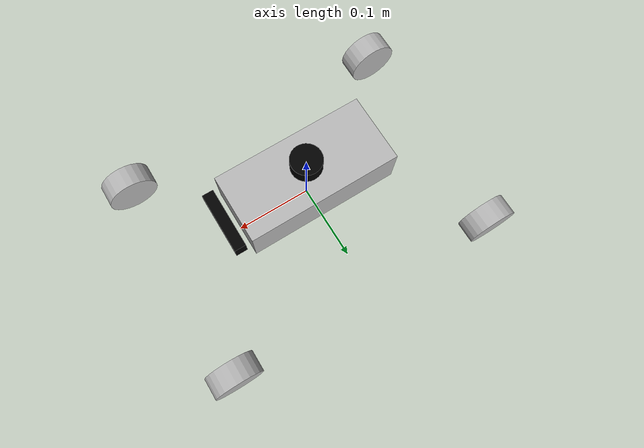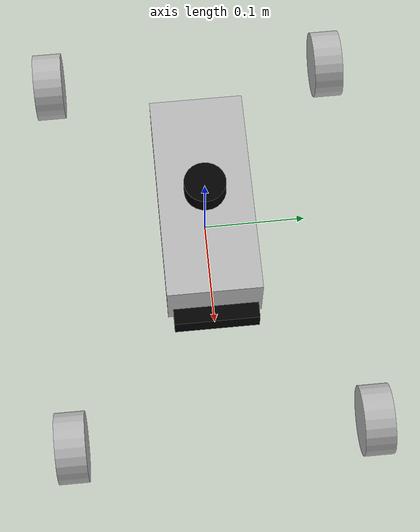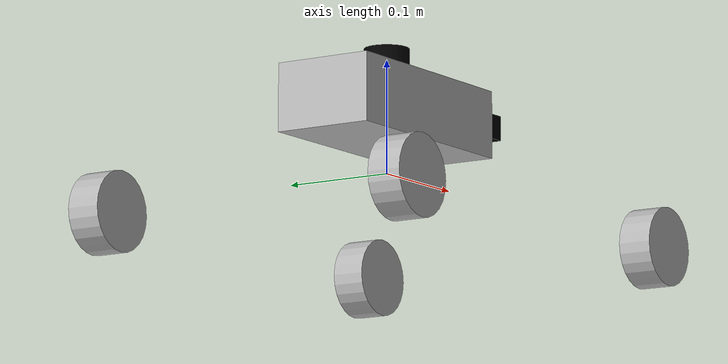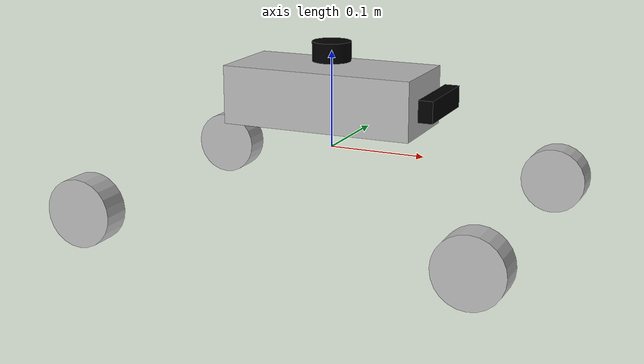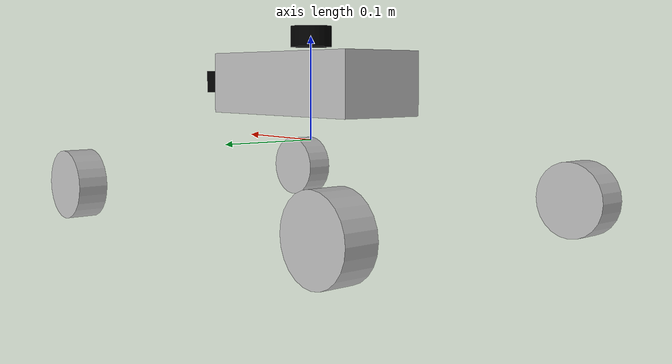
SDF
<?xml version="1.0" ?>
<sdf version="1.5">
  <model name="basic_mobile_bot">
  <static>false</static>

  <!-- ****************** ROBOT BASE FOOTPRINT ***************************  -->
  <pose>0.0 0.0 0.0 0.0 0.0 0.0</pose>
  <link name="base_footprint"/>

  <!-- ********************** ROBOT BASE *********************************  -->
  <link name="base_link">

    <collision name="base_collision">
      <pose>0 0 0.055 0 0 0</pose>
      <geometry>
        <box>
          <size>0 0 0.055 0 0 0</size>
        </box>
      </geometry>
    </collision>

    <visual name="base_visual">
     <pose>0 0 0.055 0 0 0</pose>
      <geometry>
      	<box>
          <size>0.2 0.09 0.06</size>
        </box>
       </geometry>
    </visual>
  </link>

  <!-- *********************** IMU SENSOR SETUP **************************  -->
  <link name="imu_link">
    <gravity>true</gravity>
    <sensor name="bmb_imu" type="imu">
      <always_on>true</always_on>
      <update_rate>100</update_rate>
      <visualize>true</visualize>
      <imu>
        <orientation>
          <x>
            <noise type="gaussian">
              <mean>0.0</mean>
              <stddev>2e-3</stddev>
            </noise>
          </x>
          <y>
            <noise type="gaussian">
              <mean>0.0</mean>
              <stddev>2e-3</stddev>
            </noise>
          </y>
          <z>
            <noise type="gaussian">
              <mean>0.0</mean>
              <stddev>2e-3</stddev>
            </noise>
          </z>
        </orientation>
        <angular_velocity>
          <x>
            <noise type="gaussian">
              <mean>0.0</mean>
              <stddev>2e-4</stddev>
            </noise>
          </x>
          <y>
            <noise type="gaussian">
              <mean>0.0</mean>
              <stddev>2e-4</stddev>
            </noise>
          </y>
          <z>
            <noise type="gaussian">
              <mean>0.0</mean>
              <stddev>2e-4</stddev>
            </noise>
          </z>
        </angular_velocity>
        <linear_acceleration>
          <x>
            <noise type="gaussian">
              <mean>0.0</mean>
              <stddev>1.7e-2</stddev>
            </noise>
          </x>
          <y>
            <noise type="gaussian">
              <mean>0.0</mean>
              <stddev>1.7e-2</stddev>
            </noise>
          </y>
          <z>
            <noise type="gaussian">
              <mean>0.0</mean>
              <stddev>1.7e-2</stddev>
            </noise>
          </z>
        </linear_acceleration>
      </imu>
      <plugin name="basic_mobile_bot_imu" filename="libgazebo_ros_imu_sensor.so">
        <initial_orientation_as_reference>false</initial_orientation_as_reference>
        <frame_name>imu_link</frame_name>
        <ros>
          <namespace>/imu</namespace>
          <remapping>~/out:=data</remapping>
        </ros>
      </plugin>
    </sensor>
  </link>

  <!-- *********************** GPS SETUP *********************************  -->
  <link name="gps_link">
    <sensor name="bmb_gps" type="gps">
      <always_on>true</always_on>
      <update_rate>10.0</update_rate>
      <gps>
        <position_sensing>
          <horizontal>
            <noise type="gaussian">
              <mean>0.0</mean>
              <stddev>1e-2</stddev>
            </noise>
          </horizontal>
          <vertical>
            <noise type="gaussian">
              <mean>0.0</mean>
              <stddev>1</stddev>
            </noise>
          </vertical>
        </position_sensing>
      </gps>
      <plugin name="basic_mobile_bot_gps" filename="libgazebo_ros_gps_sensor.so">
        <ros>
          <remapping>~/out:=gps/fix</remapping>
        </ros>
      </plugin>
    </sensor>
  </link>

  <!-- *********************** DEPTH CAMERA ******************************  -->
	<!-- The depth camera (e.g. Intel Realsense camera). -->
	<link name="camera_depth_frame">
	  <pose>0.12 0 0.65 -1.5708 0 -1.5708</pose>
	</link>

	<link name="camera_link">
	  <pose>0.12 0 0.056 0 0 0</pose>

	  <visual name="camera_visual">
	    <pose>-0.005 0 0 0 0 0</pose>
	    <geometry>
	      <box>
		<size>0.015 0.08 0.022</size>
	      </box>
	    </geometry>
	    <material>
	      <ambient>0 0 0 1.0</ambient>
	      <diffuse>0 0 0 1.0</diffuse>
	      <specular>0.0 0.0 0.0 1.0</specular>
	      <emissive>0.0 0.0 0.0 1.0</emissive>
	    </material>
	  </visual>

	  <sensor name="depth_camera" type="camera">
	    <always_on>true</always_on>
	    <visualize>false</visualize>
	    <update_rate>5</update_rate>
	    <camera name="camera">
	      <horizontal_fov>1.02974</horizontal_fov>
	      <image>
		<width>640</width>
		<height>480</height>
		<format>R8G8B8</format>
	      </image>
	      <clip>
		<near>0.02</near>
		<far>10</far>
	      </clip>
	      <noise>
		<type>gaussian</type>
		<!-- Noise is sampled independently per pixel on each frame.
		     That pixel's noise value is added to each of its color
		      channels, which at that point lie in the range [0,1]. -->
		<mean>0.0</mean>
		<stddev>0.007</stddev>
	      </noise>
	    </camera>
	    <plugin name="depth_camera_controller" filename="libgazebo_ros_camera.so">
	      <camera_name>depth_camera</camera_name>
	      <frame_name>camera_depth_frame</frame_name>
	      <hack_baseline>0</hack_baseline>
	      <min_depth>0.001</min_depth>
	    </plugin>
	  </sensor>
	</link>

  <!-- ****************************** LIDAR *****************************    -->
  <link name="lidar_link">
    <inertial>
      <pose>0.13 0 0.10 0 0 0</pose>
      <inertia>
        <ixx>0.001</ixx>
        <ixy>0.000</ixy>
        <ixz>0.000</ixz>
        <iyy>0.001</iyy>
        <iyz>0.000</iyz>
        <izz>0.001</izz>
      </inertia>
      <mass>0.114</mass>
    </inertial>

    <collision name="lidar_collision">
      <pose>0 0 0.1 0 0 0</pose>
      <geometry>
        <cylinder>
          <radius>0.0508</radius>
          <length>0.18</length>
        </cylinder>
      </geometry>
    </collision>

    <visual name="lidar_visual">
      <pose>0 0 0.1 0 0 0</pose>
      <geometry>
        <cylinder>
          <radius>0.02</radius>
          <length>0.02</length>
        </cylinder>
      </geometry>
      <material>
        <ambient>0.0 0.0 0.0 1.0</ambient>
        <diffuse>0.0 0.0 0.0 1.0</diffuse>
        <specular>0.0 0.0 0.0 1.0</specular>
        <emissive>0.0 0.0 0.0 1.0</emissive>
      </material>
    </visual>

    <sensor name="lidar" type="ray">
      <pose>0 0 0.1 0 0 0</pose>
      <always_on>true</always_on>
      <visualize>false</visualize>
      <update_rate>5</update_rate>
      <ray>
        <scan>
          <horizontal>
            <samples>8000</samples>
            <resolution>1.000000</resolution>
            <min_angle>-3.14159</min_angle>
            <max_angle>3.14159</max_angle>
          </horizontal>
        </scan>
        <range>
          <min>0.3</min>
          <max>15.0</max>
          <resolution>0.015</resolution>
        </range>
        <noise>
          <type>gaussian</type>
          <mean>0.0</mean>
          <stddev>0.01</stddev>
        </noise>
      </ray>
      <plugin name="scan" filename="libgazebo_ros_ray_sensor.so">
        <ros>
          <remapping>~/out:=scan</remapping>
        </ros>
        <output_type>sensor_msgs/LaserScan</output_type>
        <frame_name>lidar_link</frame_name>
      </plugin>
    </sensor>
  </link>

  <!-- *********************** DRIVE WHEELS ******************************  -->

  <link name="bl_link">
    <pose>-0.2 0.15 -0.05 0 1.570796 1.570796</pose>

    <collision name="bl_link_collision">
      <geometry>
        <cylinder>
          <radius>0.035</radius>
          <length>0.03</length>
        </cylinder>
      </geometry>
    </collision>

    <visual name="bl_link_visual">
      <geometry>
        <cylinder>
          <radius>0.035</radius>
          <length>0.03</length>
        </cylinder>
      </geometry>
    </visual>
  </link>

  <link name="br_link">
    <pose>-0.2 -0.15 -0.05 0 1.570796 1.570796</pose>

    <collision name="br_link_collision">
      <geometry>
        <cylinder>
          <radius>0.035</radius>
          <length>0.03</length>
        </cylinder>
      </geometry>
    </collision>

    <visual name="br_link_visual">
      <geometry>
        <cylinder>
          <radius>0.035</radius>
          <length>0.03</length>
        </cylinder>
      </geometry>
    </visual>
  </link>

    <link name="fl_link">
    <pose>0.2 0.15 -0.05 0 1.570796 1.570796</pose>

    <collision name="fl_link_collision">
      <geometry>
        <cylinder>
          <radius>0.035</radius>
          <length>0.03</length>
        </cylinder>
      </geometry>
    </collision>

    <visual name="fl_link_visual">
      <geometry>
        <cylinder>
          <radius>0.035</radius>
          <length>0.03</length>
        </cylinder>
      </geometry>
    </visual>
  </link>

    <link name="fr_link">
    <pose>0.2 -0.15 -0.05 0 1.570796 1.570796</pose>

    <collision name="fr_link_collision">
      <geometry>
        <cylinder>
          <radius>0.035</radius>
          <length>0.03</length>
        </cylinder>
      </geometry>
    </collision>

    <visual name="fr_link_visual">
      <geometry>
        <cylinder>
          <radius>0.035</radius>
          <length>0.03</length>
        </cylinder>
      </geometry>
    </visual>
  </link>

  <!-- ************************ JOINTS ***********************************  -->
  <!-- Pose of the joint is the same as the child link frame -->
  <!-- Axis is the axis of rotation relative to the child link frame -->

  <joint name="base_joint" type="fixed">
    <parent>base_footprint</parent>
    <child>base_link</child>
    <pose>0 0 0 0 0</pose>
  </joint>

  <joint name="bl_joint" type="revolute">
    <parent>base_link</parent>
    <child>bl_link</child>
    <pose>0 0 0 0 0 0</pose>
    <axis>
      <xyz>0 0 1</xyz>
    </axis>
  </joint>

  <joint name="br_joint" type="revolute">
    <parent>base_link</parent>
    <child>br_link</child>
    <pose>0 0 0 0 0 0</pose>
    <axis>
      <xyz>0 0 1</xyz>
    </axis>
  </joint>

   <joint name="fl_joint" type="revolute">
    <parent>base_link</parent>
    <child>fl_link</child>
    <pose>0 0 0 0 0 0</pose>
    <axis>
      <xyz>0 0 1</xyz>
    </axis>
  </joint>

   <joint name="fr_joint" type="revolute">
    <parent>base_link</parent>
    <child>fr_link</child>
    <pose>0 0 0 0 0 0</pose>
    <axis>
      <xyz>0 0 1</xyz>
    </axis>
  </joint>

   <joint name="lidar_joint" type="fixed">
    <parent>base_link</parent>
    <child>lidar_link</child>
    <pose>0 0 0 0 0 0</pose>
  </joint>

  <joint name="camera_joint" type="fixed">
    <parent>base_link</parent>
    <child>camera_link</child>
    <pose>0 0 0 0 0 0</pose>
  </joint>

  <joint name="imu_joint" type="fixed">
    <parent>base_link</parent>
    <child>imu_link</child>
    <pose>0 0 0 0 0 0</pose>
  </joint>

  <joint name="gps_joint" type="fixed">
    <parent>base_link</parent>
    <child>gps_link</child>
    <pose>0 0 0 0 0 0</pose>
  </joint>

 <!-- *********************** WHEEL ODOMETRY ***************************    -->
  <plugin name="basic_mobile_bot_diff_drive" filename="libgazebo_ros_diff_drive.so">

    <update_rate>30</update_rate>
    <num_wheel_pairs>2</num_wheel_pairs>
    <!-- wheels -->
    <left_joint>bl_joint</left_joint>
    <right_joint>br_joint</right_joint>
    <left_joint>fl_joint</left_joint>
    <right_joint>fr_joint</right_joint>

    <!-- kinematics -->
    <wheel_separation>0.27</wheel_separation>
    <wheel_diameter>0.15</wheel_diameter>

    <!-- limits -->
    <max_wheel_torque>2</max_wheel_torque>
    <max_wheel_acceleration>1.0</max_wheel_acceleration>

    <!-- Receive velocity commands on this ROS topic -->
    <command_topic>cmd_vel</command_topic>

    <!-- output -->
    <!-- When false, publish no wheel odometry data to a ROS topic -->
    <publish_odom>true</publish_odom>

    <!-- When true, publish coordinate transform from odom to base_footprint -->
    <!-- I usually use the robot_localization package to publish this transform -->
    <publish_odom_tf>false</publish_odom_tf>

    <!-- When true, publish coordinate transform from base_link to the wheels -->
    <!-- The robot_state_publisher package is often used to publish this transform -->
    <publish_wheel_tf>false</publish_wheel_tf>

    <odometry_topic>odom</odometry_topic>
    <odometry_frame>odom</odometry_frame>
    <robot_base_frame>base_footprint</robot_base_frame>

    <!-- Odometry source, 0 for ENCODER, 1 for WORLD, defaults to WORLD -->
    <odometry_source>1</odometry_source>

    <!-- Change the ROS topic we will publish the odometry data to -->
    <ros>
      <remapping>odom:=wheel/odometry</remapping>
    </ros>

  </plugin>

 <!-- *********************** JOINT STATE PUBLISHER *********************   -->

  <plugin name="basic_mobile_bot_joint_state" filename="libgazebo_ros_joint_state_publisher.so">
    <ros>
      <remapping>~/out:=joint_states</remapping>
    </ros>
    <update_rate>30</update_rate>
    <joint_name>bl_joint</joint_name>
    <joint_name>br_joint</joint_name>
    <joint_name>fl_joint</joint_name>
    <joint_name>fr_joint</joint_name>
  </plugin>

  </model>
</sdf>
